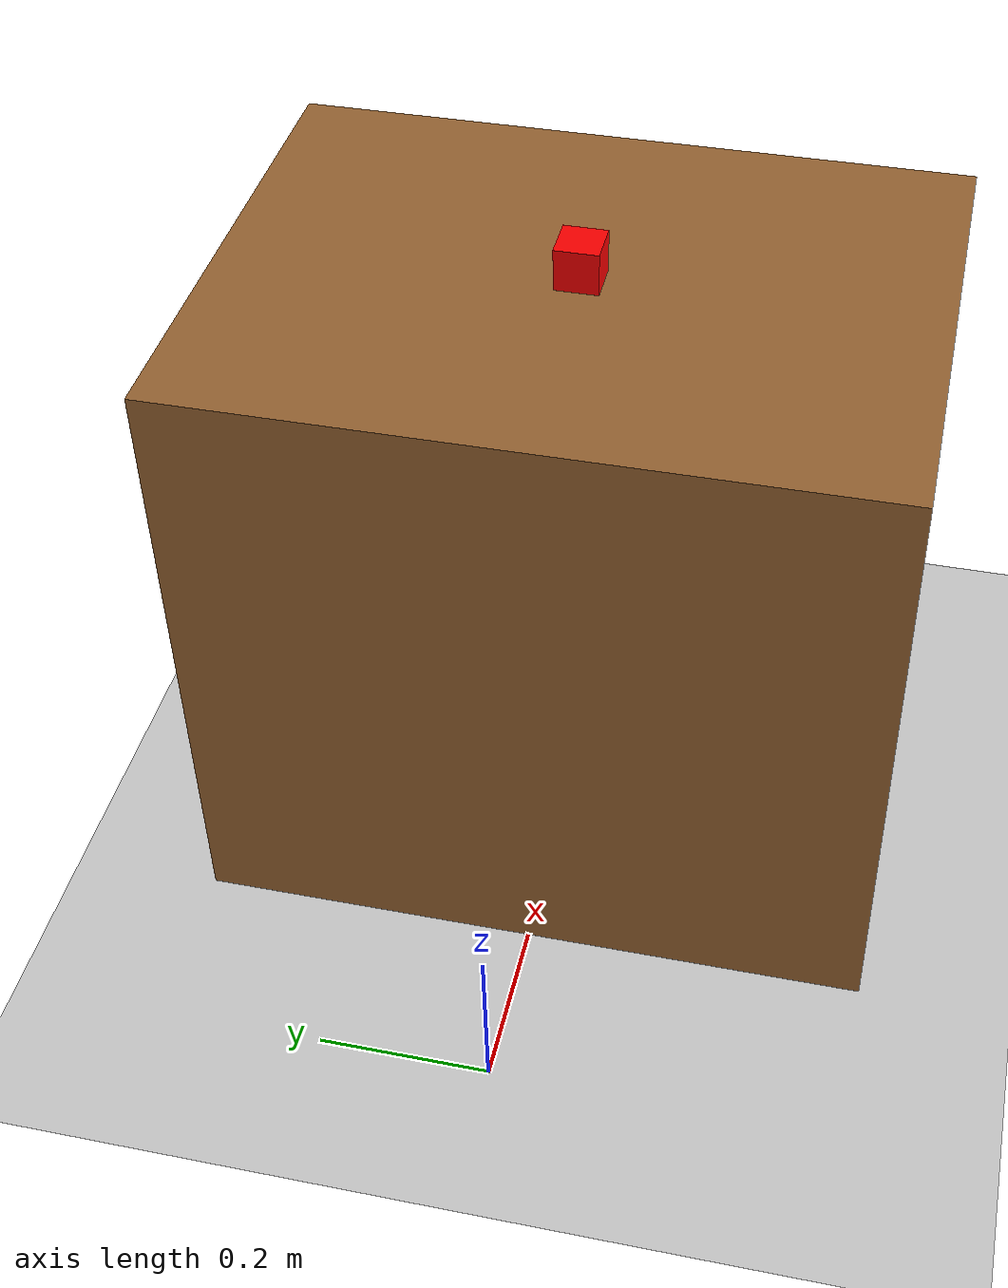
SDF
<?xml version="1.0" ?>
<sdf version="1.8">
  <world name="default">
    <physics name="1ms" type="ignored">
      <max_step_size>0.001</max_step_size>
      <real_time_factor>1.0</real_time_factor>
    </physics>
    <plugin
      filename="gz-sim-physics-system"
      name="gz::sim::systems::Physics">
    </plugin>
    <plugin
      filename="gz-sim-user-commands-system"
      name="gz::sim::systems::UserCommands">
    </plugin>
    <plugin
      filename="gz-sim-scene-broadcaster-system"
      name="gz::sim::systems::SceneBroadcaster">
    </plugin>

    <scene>
      <shadows>0</shadows>
    </scene>

    <light type="directional" name="sun">
      <cast_shadows>true</cast_shadows>
      <pose>0 0 10 0 0 0</pose>
      <diffuse>0.8 0.8 0.8 1</diffuse>
      <specular>0.2 0.2 0.2 1</specular>
      <attenuation>
        <range>1000</range>
        <constant>0.9</constant>
        <linear>0.01</linear>
        <quadratic>0.001</quadratic>
      </attenuation>
      <direction>-0.5 0.1 -0.9</direction>
    </light>

    <model name="ground_plane">
      <static>true</static>
      <link name="link">
        <collision name="collision">
          <geometry>
            <plane>
              <normal>0 0 1</normal>
              <size>100 100</size>
            </plane>
          </geometry>
        </collision>
        <visual name="visual">
          <geometry>
            <plane>
              <normal>0 0 1</normal>
              <size>100 100</size>
            </plane>
          </geometry>
          <material>
            <ambient>0.8 0.8 0.8 1</ambient>
            <diffuse>0.8 0.8 0.8 1</diffuse>
            <specular>0.8 0.8 0.8 1</specular>
          </material>
        </visual>
      </link>
    </model>
    <model name="desk">
      <static>true</static>
      <pose>0.5 0 0.375 0 0 0</pose>
      <link name="link">
        <collision name="collision">
          <geometry><box><size>0.6 0.8 0.75</size></box></geometry>
        </collision>
        <visual name="visual">
          <geometry><box><size>0.6 0.8 0.75</size></box></geometry>
          <material>
            <ambient>0.6 0.4 0.2 1</ambient>
            <diffuse>0.6 0.4 0.2 1</diffuse>
            <specular>0.6 0.4 0.2 1</specular>
          </material>
        </visual>
      </link>
    </model>

    <model name="cube">
      <pose>0.5 0 0.775 0 0 0</pose>
      <link name="link">
        <inertial>
          <mass>0.1</mass>
          <inertia><ixx>0.001</ixx><iyy>0.001</iyy><izz>0.001</izz></inertia>
        </inertial>
        <collision name="collision">
          <geometry><box><size>0.05 0.05 0.05</size></box></geometry>
          <surface>
            <friction>
              <ode>
                <mu>1.0</mu>
                <mu2>1.0</mu2>
              </ode>
            </friction>
          </surface>
        </collision>
        <visual name="visual">
          <geometry><box><size>0.05 0.05 0.05</size></box></geometry>
          <material>
            <ambient>1.0 0.0 0.0 1</ambient>
            <diffuse>1.0 0.0 0.0 1</diffuse>
            <specular>0.5 0.5 0.5 1</specular>
          </material>
        </visual>
      </link>
    </model>
  </world>
</sdf>
